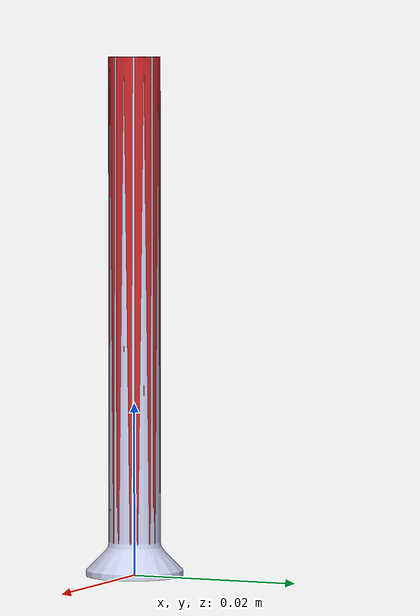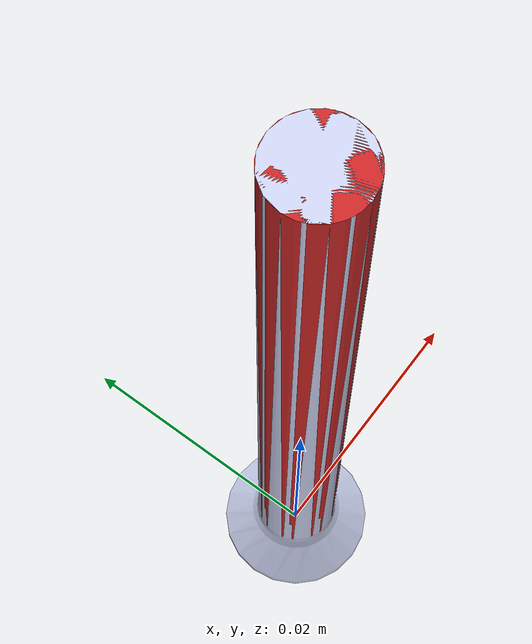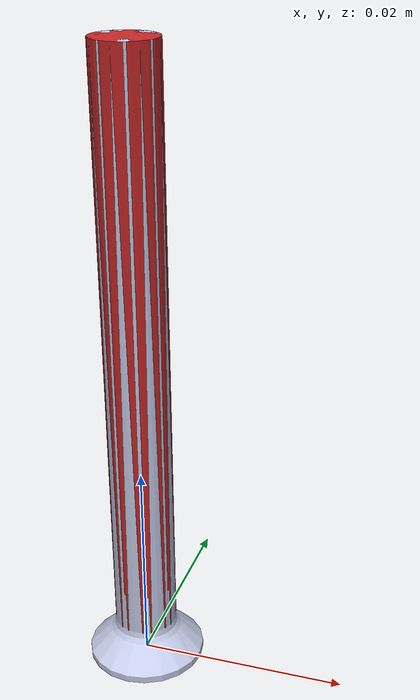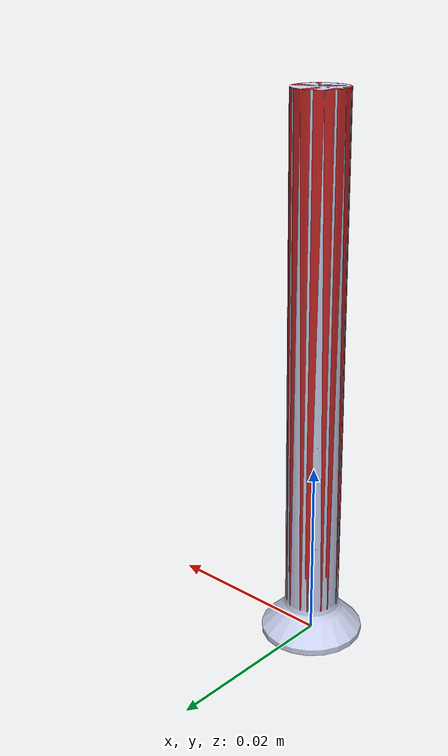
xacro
<?xml version="1.0"?>
<robot name="104322" xmlns:xacro="http://www.ros.org/wiki/xacro">
	<xacro:include filename="$(find object_description)/chair_urdf/104322.SLDPRT.urdf"/>
	<xacro:include filename="$(find object_description)/chair_xacro_re/for_assemble_macro.xacro"/>

	<xacro:property name="x_offset" value="0.0"/>
	<xacro:property name="y_offset" value="0.0"/>
	<xacro:property name="z_offset" value="0.0"/>

	<xacro:shaft_definition link_name="104322 shaft simplex part5-8-9-10/part6-8-9-10 1"
							length="0.06"
							radius="0.003"
							x="${0.0 + x_offset}" y="${0.0 + y_offset}" z="${0.03 + z_offset}"
							rx="0" ry="0" rz="0"
							parent="104322.SLDPRT"/>

</robot>

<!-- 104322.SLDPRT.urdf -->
<robot
  name="104322.SLDPRT">
  <link
    name="104322.SLDPRT">
    <inertial>
      <origin
        xyz="-8.2475E-20 7.5239E-20 0.028536"
        rpy="0 -1.5707963267949 0" />
      <mass
        value="0.0017863" />
      <inertia
        ixx="9.8797E-09"
        ixy="1.3179E-19"
        ixz="-1.3179E-19"
        iyy="5.862E-07"
        iyz="-2.29159999999999E-25"
        izz="5.862E-07" />
    </inertial>
    <visual>
      <origin
        xyz="0 0 0"
        rpy="0 -1.5707963267949 0" />
      <geometry>
        <mesh
          filename="package://object_description/chair_meshes/104322.SLDPRT.STL" />
      </geometry>
      <material
        name="">
        <color
          rgba="0.79216 0.81961 0.93333 1" />
        <texture
          filename="package://object_description/textures/" />
      </material>
    </visual>
    <collision>
      <origin
        xyz="0 0 0"
        rpy="0 -1.5707963267949 0" />
      <geometry>
        <mesh
          filename="package://object_description/chair_meshes/104322.SLDPRT.STL" />
      </geometry>
    </collision>
  </link>
	<gazebo reference="104322.SLDPRT">
    <material>Gazebo/Black</material>
    <kp>100000.0</kp>
    <kd>1.0</kd>
    <mu1>100000</mu1>
    <mu2>100000</mu2>
    <maxVel>0</maxVel>
    <minDepth>0.00</minDepth>
  </gazebo>

</robot>

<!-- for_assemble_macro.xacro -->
<robot xmlns:xacro="http://wiki.ros.org/xacro">

	<xacro:macro name="hole_definition" params="link_name
												length radius
												x y z rx ry rz
												parent">
		<link name="${link_name}">
			<visual>
				<origin xyz="0 0 0" rpy="0 0 0"/>
				<geometry>
					<cylinder length="${length}" radius="${radius}"/>
				</geometry>
			</visual>
		</link>

		<joint name="${link_name} joint" type="fixed">
			<origin xyz="${x} ${y} ${z}" rpy="${rx} ${ry} ${rz}"/>
			<parent link="${parent}"/>
			<child link="${link_name}"/>
		</joint>

		<gazebo reference="${link_name}">
			<material>Gazebo/BlueTransparent</material>
		</gazebo>
	</xacro:macro>

	<xacro:macro name="shaft_definition" params="link_name
												length radius
												x y z rx ry rz
												parent">
		<link name="${link_name}">
			<visual>
				<origin xyz="0 0 0" rpy="0 0 0"/>
				<geometry>
					<cylinder length="${length}" radius="${radius}"/>
				</geometry>
			</visual>
		</link>

		<joint name="${link_name} joint" type="fixed">
			<origin xyz="${x} ${y} ${z}" rpy="${rx} ${ry} ${rz}"/>
			<parent link="${parent}"/>
			<child link="${link_name}"/>
		</joint>

		<gazebo reference="${link_name}">
			<material>Gazebo/RedTransparent</material>
		</gazebo>
	</xacro:macro>

	<xacro:macro name="surface_definition" params="link_name
												   box_x box_y box_z
												   x y z rx ry rz
												   parent">
		<link name="${link_name}">
			<visual>
				<origin xyz="0 0 0" rpy="0 0 0"/>
				<geometry>
					<box size="${box_x} ${box_y} ${box_z}"/>
				</geometry>
			</visual>
		</link>

		<joint name="${link_name} joint" type="fixed">
			<origin xyz="${x} ${y} ${z}" rpy="${rx} ${ry} ${rz}"/>
			<parent link="${parent}"/>
			<child link="${link_name}"/>
		</joint>

		<gazebo reference="${link_name}">
			<material>Gazebo/GreenTransparent</material>
		</gazebo>
	</xacro:macro>

</robot>
